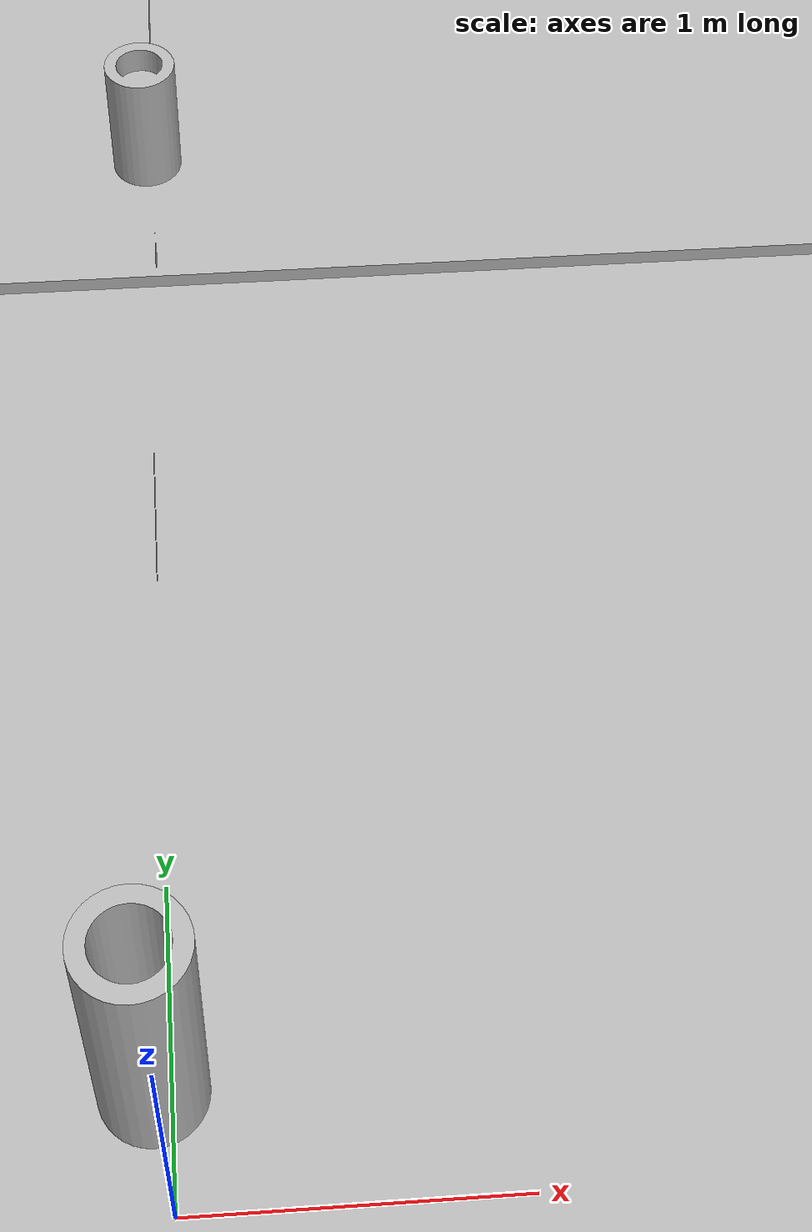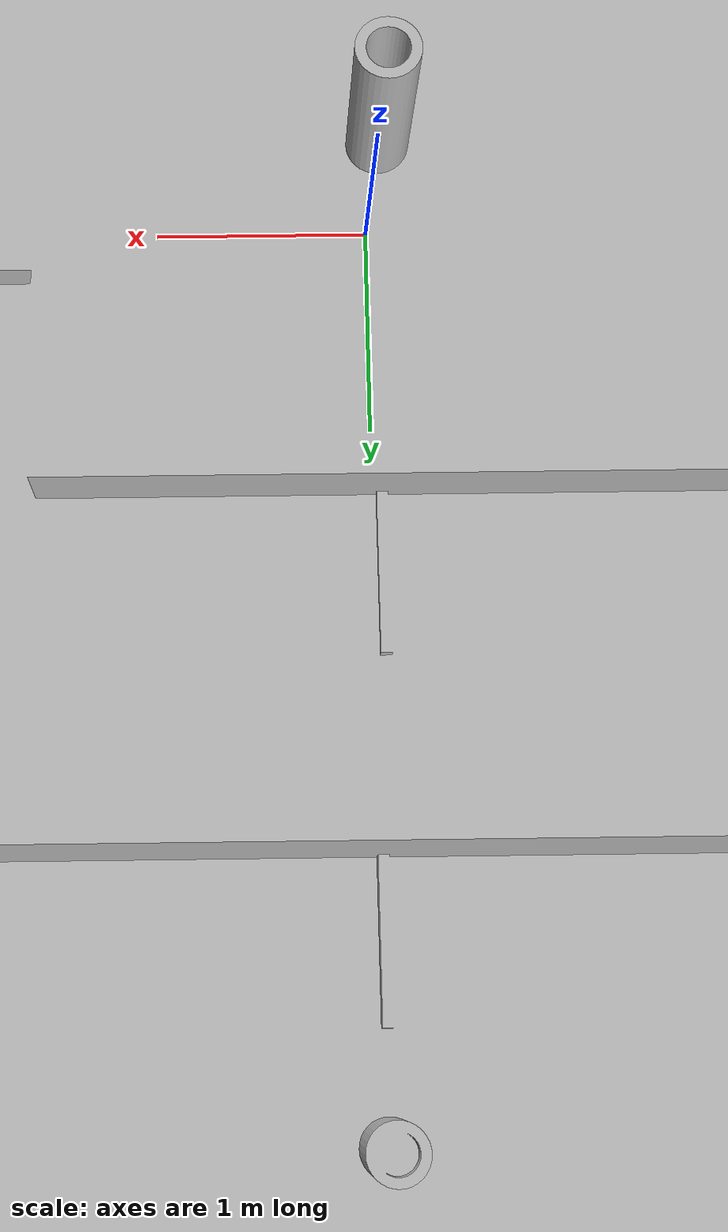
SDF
<?xml version="1.0"?>
<sdf version="1.10">
<world name="robocon2027">

<physics name="default_physics" type="ode">
<max_step_size>0.001</max_step_size>
<real_time_factor>1</real_time_factor>
<real_time_update_rate>1000</real_time_update_rate>
</physics>

<scene>
<ambient>0.4 0.4 0.4 1</ambient>
<background>0.7 0.7 0.7 1</background>
<shadows>true</shadows>
</scene>

<light name="sun" type="directional">
<cast_shadows>true</cast_shadows>
<pose>0 0 10 0 0 0</pose>
<diffuse>1 1 1 1</diffuse>
<specular>0.2 0.2 0.2 1</specular>
<direction>-0.3 -0.3 -1</direction>
</light>

<model name="field">
<static>true</static>
<link name="field_link">

<visual name="field_visual">
<geometry>
<mesh>
<uri>model://robocon2027_description/meshes/field/field.stl</uri>
</mesh>
</geometry>
</visual>

<collision name="field_collision">
<geometry>
<mesh>
<uri>model://robocon2027_description/meshes/field/field.stl</uri>
</mesh>
</geometry>
</collision>

</link>
</model>

<model name="cylinder">
<static>true</static>
<link name="cylinder_link">

<visual name="cylinder_visual">
<geometry>
<mesh>
<uri>model://robocon2027_description/meshes/field/cylinder.stl</uri>
</mesh>
</geometry>
</visual>

<collision name="cylinder_collision">
<geometry>
<mesh>
<uri>model://robocon2027_description/meshes/field/cylinder.stl</uri>
</mesh>
</geometry>
</collision>

</link>
</model>

<model name="tower">
<static>true</static>
<link name="tower_link">

<visual name="tower_visual">
<geometry>
<mesh>
<uri>model://robocon2027_description/meshes/field/tower.stl</uri>
</mesh>
</geometry>
</visual>

<collision name="tower_collision">
<geometry>
<mesh>
<uri>model://robocon2027_description/meshes/field/tower.stl</uri>
</mesh>
</geometry>
</collision>

</link>
</model>

</world>
</sdf>
